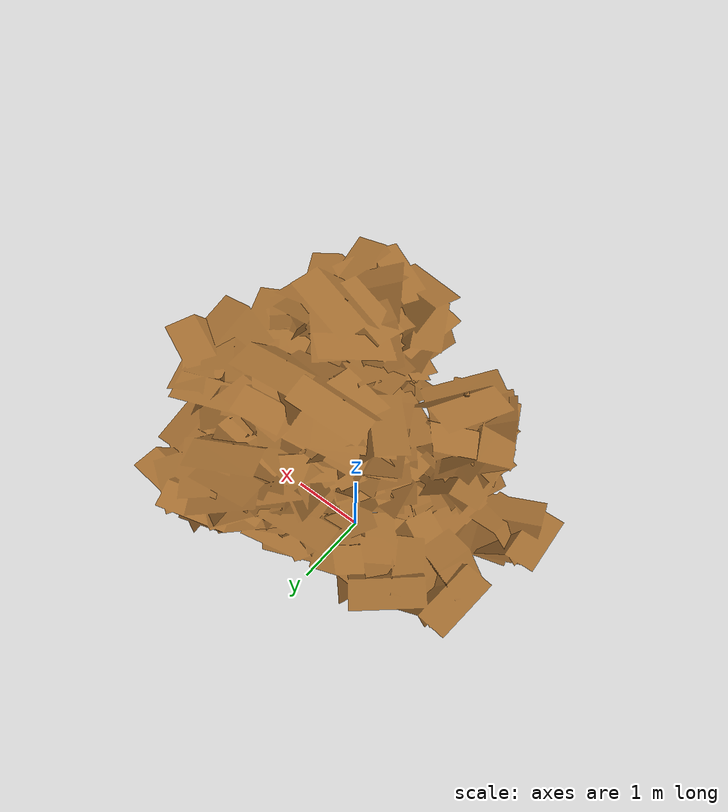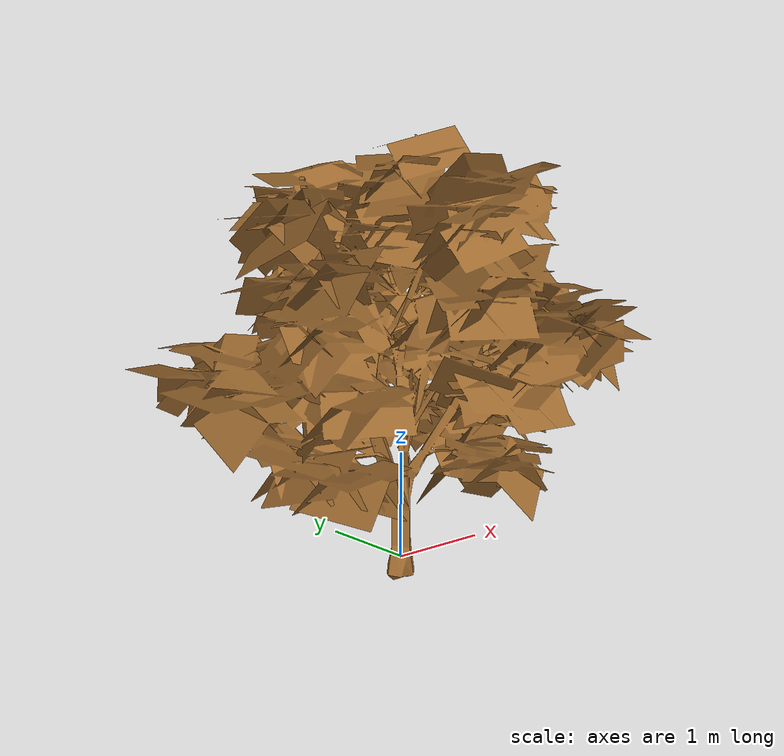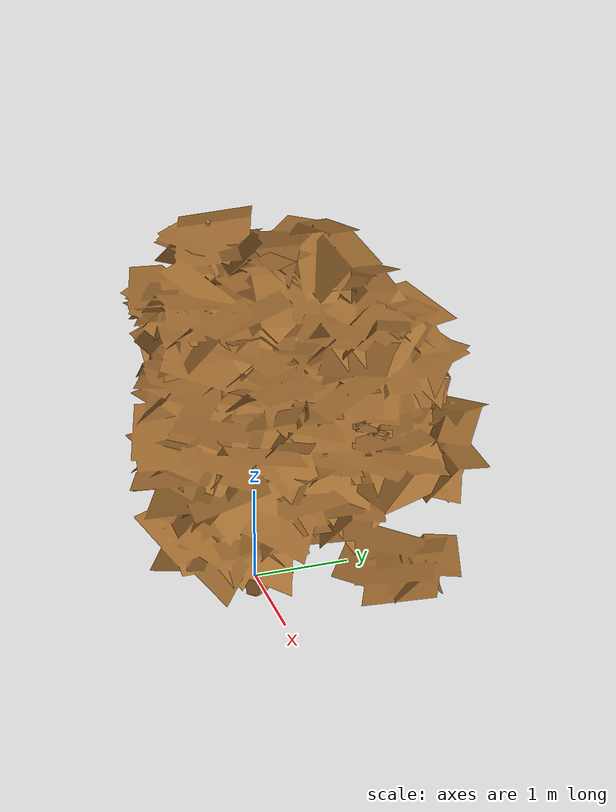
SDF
<?xml version="1.0" ?>
<sdf version="1.5">
  <model name="walnut">
    <static>true</static>
    <link name="link">
      <collision name="collision">
        <pose>0 0 1.875 0 -0 0</pose>
        <geometry>
          <box>
            <size>3.5 3 3.75</size>
          </box>
        </geometry>
      </collision>

      <visual name="visual">
        <pose>0 0 0 0 0 0</pose>
        <geometry>
          <mesh>
            <uri>model://walnut/meshes/walnut_lowpoly.dae</uri>
          </mesh>
        </geometry>
        <material>
          <script>
            <uri>model://walnut/materials/scripts</uri>
            <uri>model://walnut/materials/textures</uri>
            <name>trees/walnut</name>
          </script>
        </material>
      </visual>

    </link>
  </model>
</sdf>
